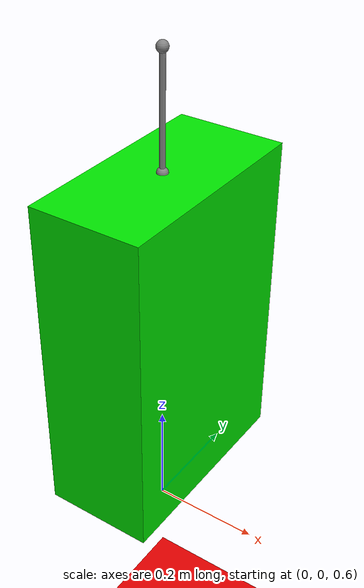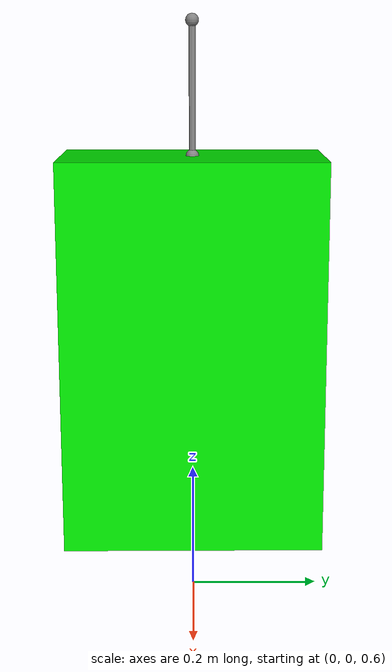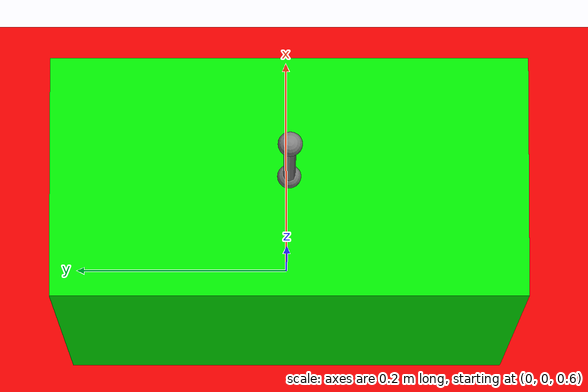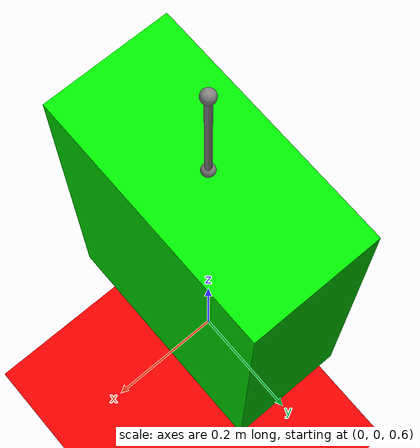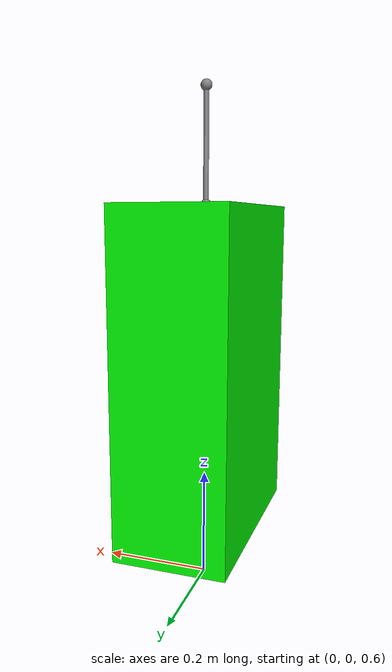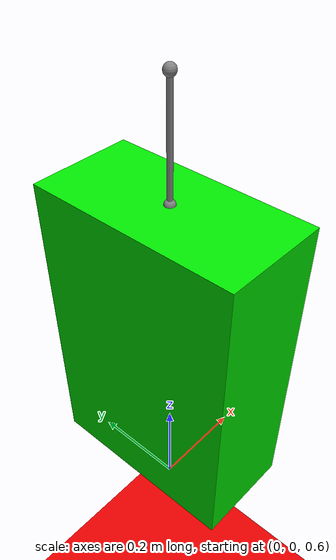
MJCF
<mujoco>
	<worldbody>
        <light diffuse=".5 .5 .5" pos="0 0 3" dir="0 0 -1"/>
		<geom type="plane" size="1 1 0.1" rgba=".9 0 0 1"/>
		<site name="fixed" pos="0 0 1.5" type="sphere" size="0.01"/>
		<body pos="0 0 1">
			<joint type="free"/>
			<site name="top" pos="0 0 0.3" type="sphere" size="0.01"/>
			<geom name="the_box" type="box" size=".1 .2 .3" rgba="0 .9 0 1"/>
		</body>
	</worldbody>
	<tendon>
		<spatial limited="true" range="0 0.6" width="0.005">
			<site site="fixed"/>
			<site site="top"/>
		</spatial>
	</tendon>
</mujoco>
